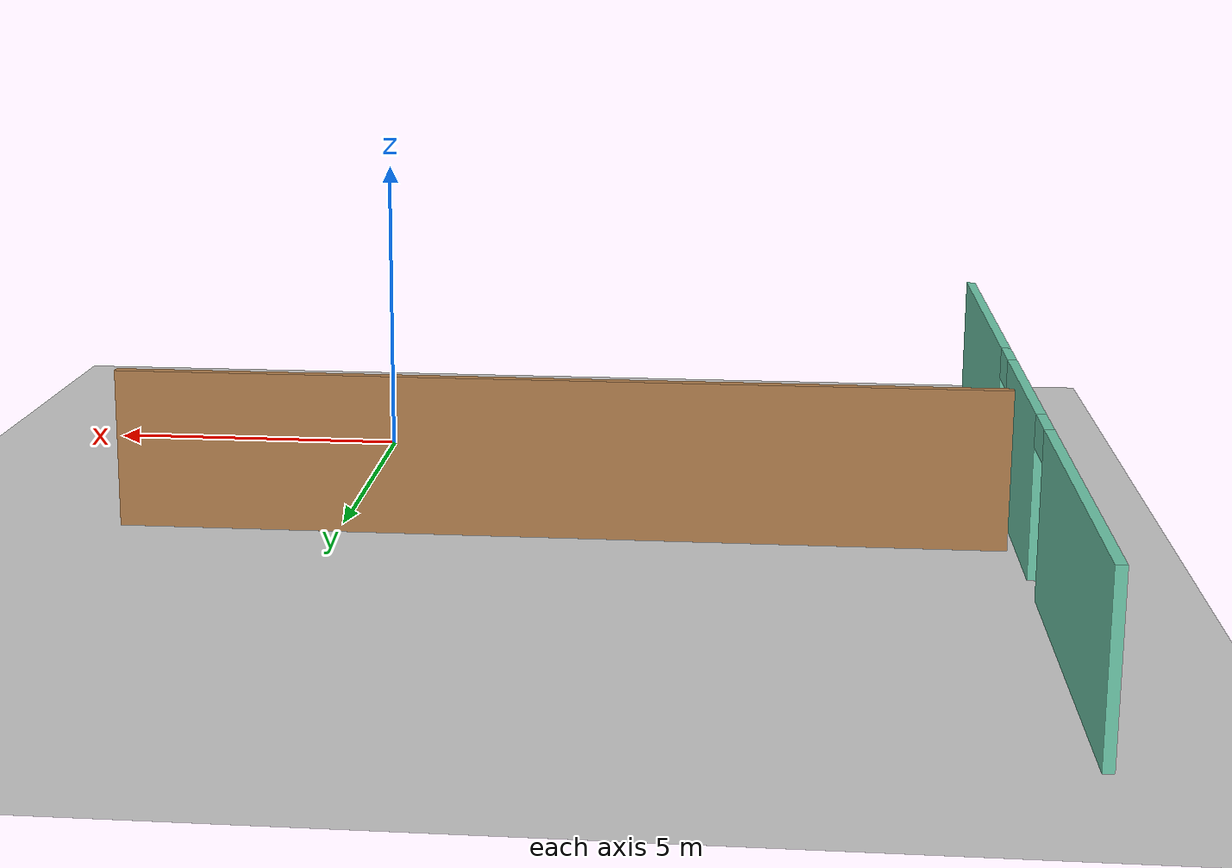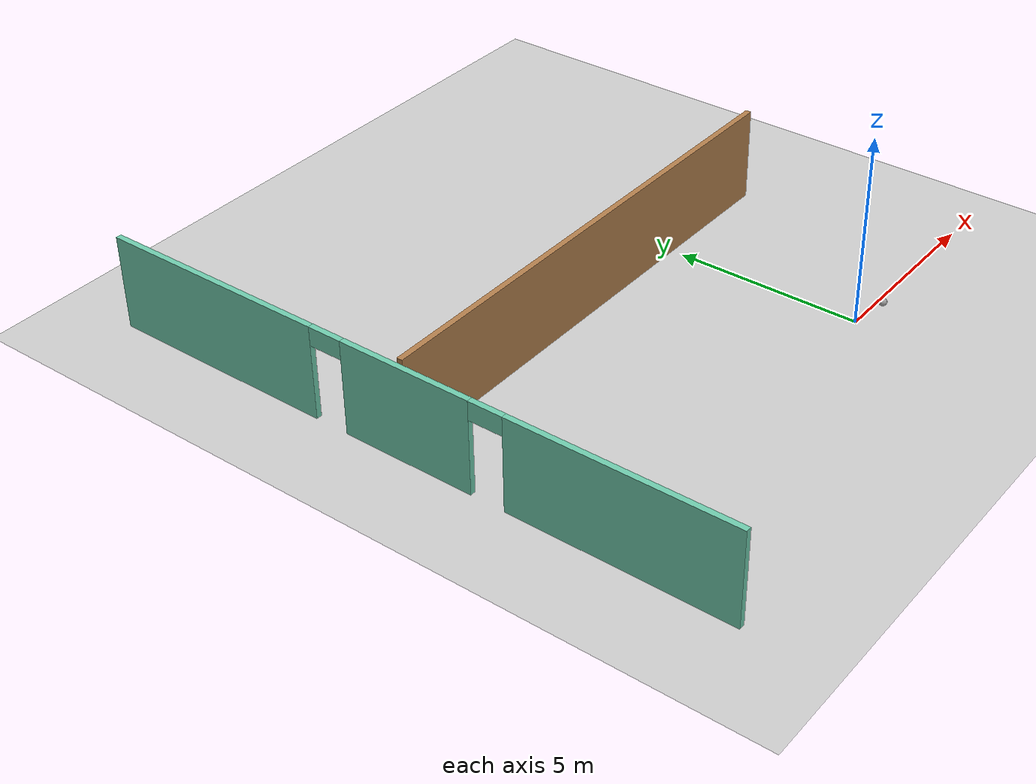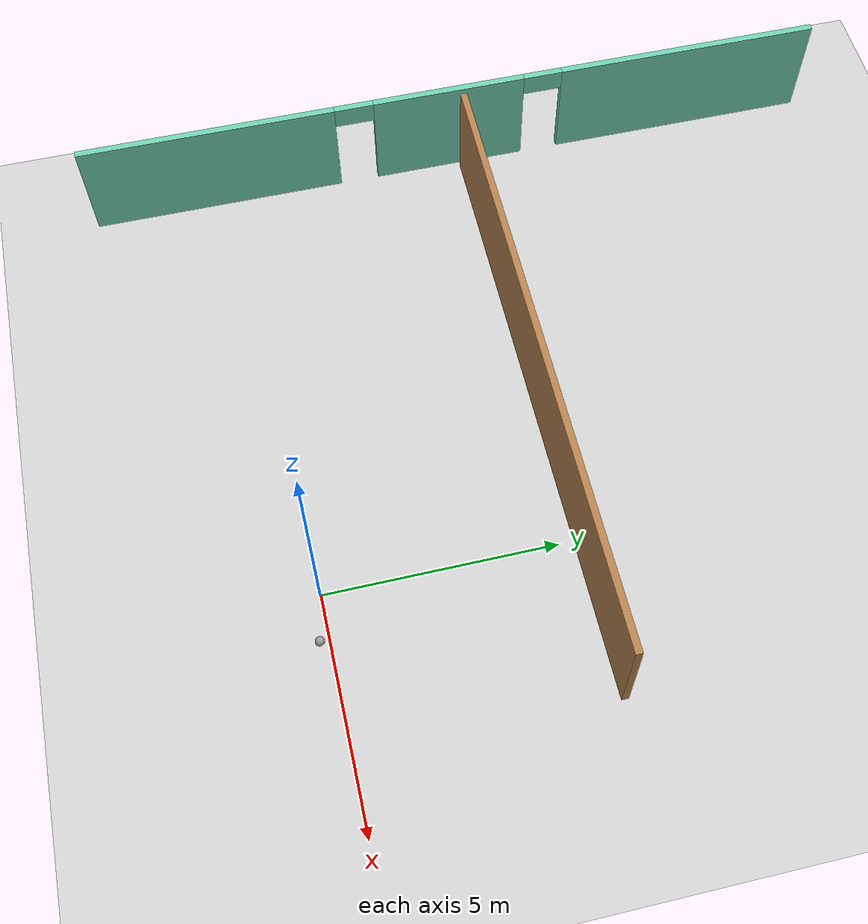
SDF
<sdf version="1.6">
 <world name="default">
  <model name="ground_plane">
   <static>1</static>
   <link name="link">
    <collision name="collision">
     <geometry><plane><normal>0 0 1</normal><size>100 100</size></plane></geometry>
     <surface>
      <contact><collide_bitmask>65535</collide_bitmask></contact>
      <friction><ode><mu>100</mu><mu2>50</mu2></ode></friction>
     </surface>
    </collision>
    <visual name="visual">
     <cast_shadows>0</cast_shadows>
     <geometry><plane><normal>0 0 1</normal><size>100 100</size></plane></geometry>
     <material>
      <script><uri>file://media/materials/scripts/gazebo.material</uri><name>Gazebo/Grey</name></script>
     </material>
    </visual>
   </link>
  </model>
  <model name="world">
   <pose>0.998 -1.93669 0 0 -0 0</pose>
   <link name="Wall_13">
    <pose>-11.4716 7.14221 0 0 0 -1.5708</pose>
    <visual name="Wall_13_Visual_0">
     <pose>-5.58135 0 1.25 0 -0 0</pose>
     <geometry><box><size>6.0873 0.15 2.5</size></box></geometry>
     <material>
      <script><uri>file://media/materials/scripts/gazebo.material</uri><name>Gazebo/Grey</name></script>
      <ambient>0.435294 0.796078 0.67451 1</ambient>
     </material>
     <meta><layer>0</layer></meta>
    </visual>
    <collision name="Wall_13_Collision_0">
     <geometry><box><size>6.0873 0.15 2.5</size></box></geometry>
     <pose>-5.58135 0 1.25 0 -0 0</pose>
    </collision>
    <visual name="Wall_13_Visual_1">
     <pose>0.128558 0 1.25 0 -0 0</pose>
     <geometry><box><size>3.53252 0.15 2.5</size></box></geometry>
     <material>
      <script><uri>file://media/materials/scripts/gazebo.material</uri><name>Gazebo/Grey</name></script>
      <ambient>0.435294 0.796078 0.67451 1</ambient>
     </material>
     <meta><layer>0</layer></meta>
    </visual>
    <collision name="Wall_13_Collision_1">
     <geometry><box><size>3.53252 0.15 2.5</size></box></geometry>
     <pose>0.128558 0 1.25 0 -0 0</pose>
    </collision>
    <visual name="Wall_13_Visual_2">
     <pose>5.70991 0 1.25 0 -0 0</pose>
     <geometry><box><size>5.83018 0.15 2.5</size></box></geometry>
     <material>
      <script><uri>file://media/materials/scripts/gazebo.material</uri><name>Gazebo/Grey</name></script>
      <ambient>0.435294 0.796078 0.67451 1</ambient>
     </material>
     <meta><layer>0</layer></meta>
    </visual>
    <collision name="Wall_13_Collision_2">
     <geometry><box><size>5.83018 0.15 2.5</size></box></geometry>
     <pose>5.70991 0 1.25 0 -0 0</pose>
    </collision>
    <visual name="Wall_13_Visual_3">
     <pose>-2.0877 0 2.25 0 -0 0</pose>
     <geometry><box><size>0.9 0.15 0.5</size></box></geometry>
     <material>
      <script><uri>file://media/materials/scripts/gazebo.material</uri><name>Gazebo/Grey</name></script>
      <ambient>0.435294 0.796078 0.67451 1</ambient>
     </material>
     <meta><layer>0</layer></meta>
    </visual>
    <collision name="Wall_13_Collision_3">
     <geometry><box><size>0.9 0.15 0.5</size></box></geometry>
     <pose>-2.0877 0 2.25 0 -0 0</pose>
    </collision>
    <visual name="Wall_13_Visual_4">
     <pose>2.34482 0 2.25 0 -0 0</pose>
     <geometry><box><size>0.9 0.15 0.5</size></box></geometry>
     <material>
      <script><uri>file://media/materials/scripts/gazebo.material</uri><name>Gazebo/Grey</name></script>
      <ambient>0.435294 0.796078 0.67451 1</ambient>
     </material>
     <meta><layer>0</layer></meta>
    </visual>
    <collision name="Wall_13_Collision_4">
     <geometry><box><size>0.9 0.15 0.5</size></box></geometry>
     <pose>2.34482 0 2.25 0 -0 0</pose>
    </collision>
   </link>
   <link name="Wall_22">
    <collision name="Wall_22_Collision">
     <geometry><box><size>13.75 0.15 2.5</size></box></geometry>
     <pose>0 0 1.25 0 -0 0</pose>
    </collision>
    <visual name="Wall_22_Visual">
     <pose>0 0 1.25 0 -0 0</pose>
     <geometry><box><size>13.75 0.15 2.5</size></box></geometry>
     <material>
      <script><uri>file://media/materials/scripts/gazebo.material</uri><name>Gazebo/Wood</name></script>
      <ambient>1 1 1 1</ambient>
     </material>
     <meta><layer>0</layer></meta>
    </visual>
    <pose>-4.39243 7.31791 0 0 -0 0</pose>
   </link>
   <static>1</static>
  </model>
  <model name="my_ball">
   <link name="link">
    <pose>0.00155 0.648376 -0.014039 0 -0 0</pose>
    <inertial>
     <mass>1</mass>
     <inertia><ixx>0.1</ixx><ixy>0</ixy><ixz>0</ixz><iyy>0.1</iyy><iyz>0</iyz><izz>0.1</izz></inertia>
    </inertial>
    <visual name="visual">
     <geometry><sphere><radius>0.1</radius></sphere></geometry>
     <material>
      <script><name>Gazebo/Grey</name><uri>file://media/materials/scripts/gazebo.material</uri></script>
      <shader type="pixel"><normal_map>__default__</normal_map></shader>
      <ambient>1 1 1 1</ambient>
      <diffuse>1 1 1 1</diffuse>
      <specular>1 1 1 1</specular>
      <emissive>1 1 1 1</emissive>
     </material>
    </visual>
    <collision name="collision">
     <geometry><sphere><radius>0.1</radius></sphere></geometry>
     <surface>
      <friction>
       <ode><mu>1</mu><mu2>1</mu2><fdir1>0 0 0</fdir1><slip1>0</slip1><slip2>0</slip2></ode>
       <torsional>
        <coefficient>1</coefficient>
        <patch_radius>0</patch_radius>
        <surface_radius>0</surface_radius>
        <use_patch_radius>1</use_patch_radius>
        <ode><slip>0</slip></ode>
       </torsional>
      </friction>
      <bounce><restitution_coefficient>0</restitution_coefficient><threshold>1e+06</threshold></bounce>
      <contact>
       <collide_without_contact>0</collide_without_contact>
       <collide_without_contact_bitmask>1</collide_without_contact_bitmask>
       <collide_bitmask>1</collide_bitmask>
       <ode>
        <soft_cfm>0</soft_cfm>
        <soft_erp>0.2</soft_erp>
        <kp>1e+13</kp>
        <kd>1</kd>
        <max_vel>0.01</max_vel>
        <min_depth>0</min_depth>
       </ode>
       <bullet>
        <split_impulse>1</split_impulse>
        <split_impulse_penetration_threshold>-0.01</split_impulse_penetration_threshold>
        <soft_cfm>0</soft_cfm>
        <soft_erp>0.2</soft_erp>
        <kp>1e+13</kp>
        <kd>1</kd>
       </bullet>
      </contact>
     </surface>
    </collision>
   </link>
   <static>0</static>
   <pose>1.00469 -0.837356 0.12403 0 -0 0</pose>
  </model>
 </world>
</sdf>
